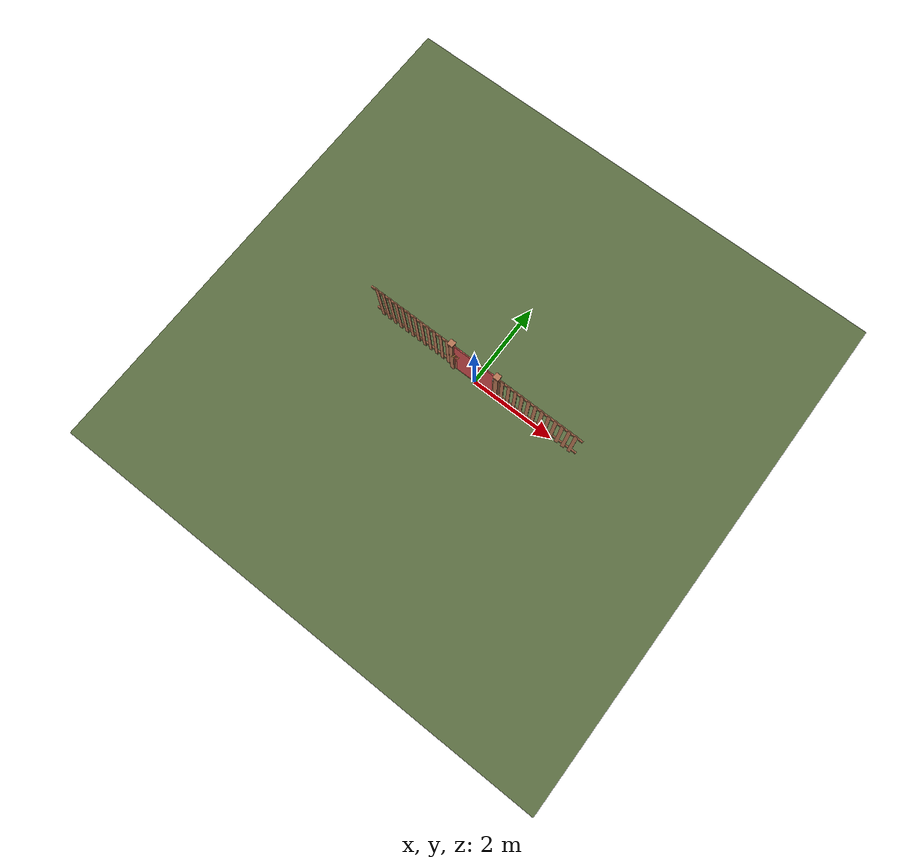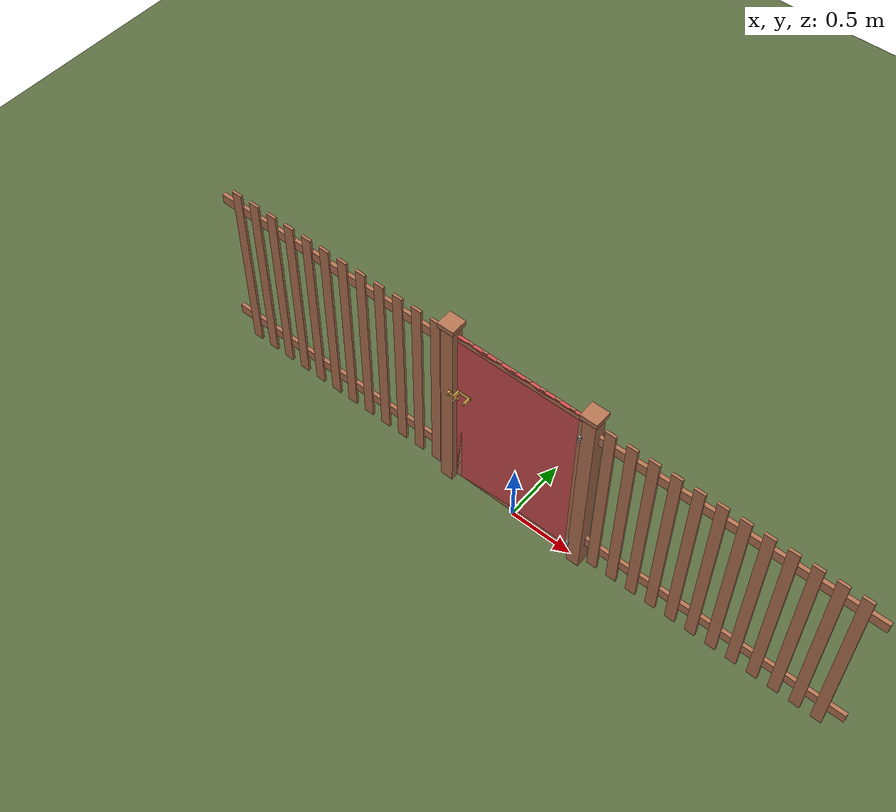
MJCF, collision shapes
<?xml version="1.0" ?>
<mujoco model="db0482_gate_swing_full">
  <compiler angle="radian" meshdir="../../hardware" texturedir="../../textures" autolimits="true" inertiafromgeom="false"/>
  <option timestep="0.002" integrator="implicitfast" cone="elliptic" impratio="10" noslip_iterations="3">
    <flag multiccd="enable"/>
  </option>
  <size memory="16M"/>
  <default>
    <geom condim="4" solref="0.005 1" solimp="0.95 0.99 0.001"/>
    <joint solreflimit="0.005 1" solimplimit="0.95 0.99 0.001"/>
    <tendon solreflimit="0.005 1"/>
    <equality solref="0.002 1"/>
  </default>
  <visual>
    <headlight ambient="0.4 0.4 0.4" diffuse="0.7 0.7 0.7" specular="0.2 0.2 0.2"/>
    <quality shadowsize="4096"/>
    <map znear="0.01" zfar="60"/>
  </visual>
  <asset>
    <mesh name="strap_hinge_f1a982ddce" file="strap_hinge_f1a982ddce.obj"/>
    <material name="mat_floor" rgba="0.35 0.42 0.25 1" specular="0.2" shininess="0.15" reflectance="0"/>
    <material name="mat_wall" rgba="0.78 0.76 0.7 1" specular="0.2" shininess="0.1" reflectance="0"/>
    <material name="mat_leaf" rgba="0.7 0.45 0.32 1" specular="0.2" shininess="0.4" reflectance="0"/>
    <material name="mat_hinge" rgba="0.65 0.66 0.68 1" specular="0.74" shininess="0.5" reflectance="0.36"/>
    <material name="mat_op_brass" rgba="0.85 0.66 0.3 1" specular="0.8" shininess="0.75" reflectance="0.4"/>
    <material name="mat_frame" rgba="0.7 0.45 0.32 1" specular="0.2" shininess="0.4" reflectance="0"/>
    <material name="mat_fence" rgba="0.7 0.45 0.32 1" specular="0.2" shininess="0.4" reflectance="0"/>
    <texture name="skybox" type="skybox" builtin="gradient" rgb1="0.6 0.7 0.85" rgb2="0.9 0.92 0.95" width="256" height="256"/>
  </asset>
  <worldbody>
    <light name="sun" pos="1.5 -2.5 4" dir="-0.3 0.5 -0.8" directional="true" diffuse="0.8 0.8 0.8" specular="0.3 0.3 0.3" castshadow="true"/>
    <light name="fill" pos="-1.5 2.5 3" dir="0.3 -0.5 -0.7" directional="true" diffuse="0.35 0.35 0.4" castshadow="false"/>
    <camera name="robot_view" pos="0 -2.05 1.334" xyaxes="1 0 0 0 0.26963 0.962964" fovy="52"/>
    <camera name="far_view" pos="0 2.05 1.334" xyaxes="-1 0 0 0 -0.26963 0.962964" fovy="52"/>
    <camera name="iso" pos="-1.558 -1.722 1.662" xyaxes="0.741536 -0.670913 0 0.242917 0.268487 0.932151" fovy="46"/>
    <camera name="detail_handle" pos="-0.282 -0.896 1.28" xyaxes="0.97561 0.219512 0 -0.070934 0.315262 0.94635" fovy="38"/>
    <geom name="floor" type="box" size="6 6 0.05" pos="0 0 -0.05" material="mat_floor" group="0" contype="1" conaffinity="1" friction="0.8 0.005 0.0001" density="2400"/>
    <geom name="hinge_pintle_0" type="cylinder" size="0.008 0.02" pos="0.503 -0.05 0.174" material="mat_hinge" group="1" contype="0" conaffinity="0" density="7850"/>
    <geom name="hinge_pintle_1" type="cylinder" size="0.008 0.02" pos="0.503 -0.05 1.374" material="mat_hinge" group="1" contype="0" conaffinity="0" density="7850"/>
    <geom name="leaf_slide_bolt_keeper_leg_n" type="box" size="0.007 0.0025 0.013" pos="-0.526 -0.063 1.0115" quat="0 0 -0.707107 0.707107" material="mat_op_brass" group="0" contype="1" conaffinity="1" friction="0.6 0.005 0.0001" density="7800"/>
    <geom name="leaf_slide_bolt_keeper_leg_p" type="box" size="0.007 0.0025 0.013" pos="-0.526 -0.063 0.9885" quat="0 0 -0.707107 0.707107" material="mat_op_brass" group="0" contype="1" conaffinity="1" friction="0.6 0.005 0.0001" density="7800"/>
    <geom name="leaf_slide_bolt_keeper_bridge" type="box" size="0.007 0.014 0.0025" pos="-0.526 -0.0735 1" quat="0 0 -0.707107 0.707107" material="mat_op_brass" group="0" contype="1" conaffinity="1" friction="0.6 0.005 0.0001" density="7800"/>
    <geom name="leaf_slide_bolt_keeper_base" type="box" size="0.015 0.02 0.001" pos="-0.526 -0.051 1" quat="0 0 -0.707107 0.707107" material="mat_op_brass" group="1" contype="0" conaffinity="0" density="7800"/>
    <geom name="post_hinge" type="box" size="0.05 0.05 0.8" pos="0.556 0 0.8" material="mat_frame" group="0" contype="1" conaffinity="1" friction="0.6 0.005 0.0001" density="350"/>
    <geom name="post_hinge_cap" type="box" size="0.065 0.065 0.02" pos="0.556 0 1.62" material="mat_frame" group="1" contype="0" conaffinity="0" density="350"/>
    <geom name="post_latch" type="box" size="0.05 0.05 0.8" pos="-0.556 0 0.8" material="mat_frame" group="0" contype="1" conaffinity="1" friction="0.6 0.005 0.0001" density="350"/>
    <geom name="post_latch_cap" type="box" size="0.065 0.065 0.02" pos="-0.556 0 1.62" material="mat_frame" group="1" contype="0" conaffinity="0" density="350"/>
    <geom name="gate_stop" type="box" size="0.02 0.012 0.06" pos="-0.486 0.0245 0.3" material="mat_frame" group="0" contype="1" conaffinity="1" friction="0.6 0.005 0.0001" density="350"/>
    <geom name="fence_picket_l_0" type="box" size="0.04 0.01 0.75" pos="-0.686 0 0.8" material="mat_fence" group="0" contype="1" conaffinity="1" friction="0.6 0.005 0.0001" density="400"/>
    <geom name="fence_picket_l_1" type="box" size="0.04 0.01 0.75" pos="-0.846 0 0.8" material="mat_fence" group="0" contype="1" conaffinity="1" friction="0.6 0.005 0.0001" density="400"/>
    <geom name="fence_picket_l_2" type="box" size="0.04 0.01 0.75" pos="-1.006 0 0.8" material="mat_fence" group="0" contype="1" conaffinity="1" friction="0.6 0.005 0.0001" density="400"/>
    <geom name="fence_picket_l_3" type="box" size="0.04 0.01 0.75" pos="-1.166 0 0.8" material="mat_fence" group="0" contype="1" conaffinity="1" friction="0.6 0.005 0.0001" density="400"/>
    <geom name="fence_picket_l_4" type="box" size="0.04 0.01 0.75" pos="-1.326 0 0.8" material="mat_fence" group="0" contype="1" conaffinity="1" friction="0.6 0.005 0.0001" density="400"/>
    <geom name="fence_picket_l_5" type="box" size="0.04 0.01 0.75" pos="-1.486 0 0.8" material="mat_fence" group="0" contype="1" conaffinity="1" friction="0.6 0.005 0.0001" density="400"/>
    <geom name="fence_picket_l_6" type="box" size="0.04 0.01 0.75" pos="-1.646 0 0.8" material="mat_fence" group="0" contype="1" conaffinity="1" friction="0.6 0.005 0.0001" density="400"/>
    <geom name="fence_picket_l_7" type="box" size="0.04 0.01 0.75" pos="-1.806 0 0.8" material="mat_fence" group="0" contype="1" conaffinity="1" friction="0.6 0.005 0.0001" density="400"/>
    <geom name="fence_picket_l_8" type="box" size="0.04 0.01 0.75" pos="-1.966 0 0.8" material="mat_fence" group="0" contype="1" conaffinity="1" friction="0.6 0.005 0.0001" density="400"/>
    <geom name="fence_picket_l_9" type="box" size="0.04 0.01 0.75" pos="-2.126 0 0.8" material="mat_fence" group="0" contype="1" conaffinity="1" friction="0.6 0.005 0.0001" density="400"/>
    <geom name="fence_picket_l_10" type="box" size="0.04 0.01 0.75" pos="-2.286 0 0.8" material="mat_fence" group="0" contype="1" conaffinity="1" friction="0.6 0.005 0.0001" density="400"/>
    <geom name="fence_picket_l_11" type="box" size="0.04 0.01 0.75" pos="-2.446 0 0.8" material="mat_fence" group="0" contype="1" conaffinity="1" friction="0.6 0.005 0.0001" density="400"/>
    <geom name="fence_rail_l" type="box" size="1 0.015 0.04" pos="-1.606 0.015 1.4" material="mat_fence" group="0" contype="1" conaffinity="1" friction="0.6 0.005 0.0001" density="400"/>
    <geom name="fence_rail_b_l" type="box" size="1 0.015 0.04" pos="-1.606 0.015 0.25" material="mat_fence" group="0" contype="1" conaffinity="1" friction="0.6 0.005 0.0001" density="400"/>
    <geom name="fence_picket_r_0" type="box" size="0.04 0.01 0.75" pos="0.686 0 0.8" material="mat_fence" group="0" contype="1" conaffinity="1" friction="0.6 0.005 0.0001" density="400"/>
    <geom name="fence_picket_r_1" type="box" size="0.04 0.01 0.75" pos="0.846 0 0.8" material="mat_fence" group="0" contype="1" conaffinity="1" friction="0.6 0.005 0.0001" density="400"/>
    <geom name="fence_picket_r_2" type="box" size="0.04 0.01 0.75" pos="1.006 0 0.8" material="mat_fence" group="0" contype="1" conaffinity="1" friction="0.6 0.005 0.0001" density="400"/>
    <geom name="fence_picket_r_3" type="box" size="0.04 0.01 0.75" pos="1.166 0 0.8" material="mat_fence" group="0" contype="1" conaffinity="1" friction="0.6 0.005 0.0001" density="400"/>
    <geom name="fence_picket_r_4" type="box" size="0.04 0.01 0.75" pos="1.326 0 0.8" material="mat_fence" group="0" contype="1" conaffinity="1" friction="0.6 0.005 0.0001" density="400"/>
    <geom name="fence_picket_r_5" type="box" size="0.04 0.01 0.75" pos="1.486 0 0.8" material="mat_fence" group="0" contype="1" conaffinity="1" friction="0.6 0.005 0.0001" density="400"/>
    <geom name="fence_picket_r_6" type="box" size="0.04 0.01 0.75" pos="1.646 0 0.8" material="mat_fence" group="0" contype="1" conaffinity="1" friction="0.6 0.005 0.0001" density="400"/>
    <geom name="fence_picket_r_7" type="box" size="0.04 0.01 0.75" pos="1.806 0 0.8" material="mat_fence" group="0" contype="1" conaffinity="1" friction="0.6 0.005 0.0001" density="400"/>
    <geom name="fence_picket_r_8" type="box" size="0.04 0.01 0.75" pos="1.966 0 0.8" material="mat_fence" group="0" contype="1" conaffinity="1" friction="0.6 0.005 0.0001" density="400"/>
    <geom name="fence_picket_r_9" type="box" size="0.04 0.01 0.75" pos="2.126 0 0.8" material="mat_fence" group="0" contype="1" conaffinity="1" friction="0.6 0.005 0.0001" density="400"/>
    <geom name="fence_picket_r_10" type="box" size="0.04 0.01 0.75" pos="2.286 0 0.8" material="mat_fence" group="0" contype="1" conaffinity="1" friction="0.6 0.005 0.0001" density="400"/>
    <geom name="fence_picket_r_11" type="box" size="0.04 0.01 0.75" pos="2.446 0 0.8" material="mat_fence" group="0" contype="1" conaffinity="1" friction="0.6 0.005 0.0001" density="400"/>
    <geom name="fence_rail_r" type="box" size="1 0.015 0.04" pos="1.606 0.015 1.4" material="mat_fence" group="0" contype="1" conaffinity="1" friction="0.6 0.005 0.0001" density="400"/>
    <geom name="fence_rail_b_r" type="box" size="1 0.015 0.04" pos="1.606 0.015 0.25" material="mat_fence" group="0" contype="1" conaffinity="1" friction="0.6 0.005 0.0001" density="400"/>
    <geom name="gate_stop_strap_0" type="box" size="0.0505 0.0096 0.048" pos="-0.556 0.0245 0.3" material="mat_frame" group="1" contype="0" conaffinity="0" density="7850"/>
    <site name="approach_point" pos="0 -1.5 0" quat="1 0 0 0" size="0.05" rgba="0.2 0.9 0.2 0.5" group="4"/>
    <site name="goal_point" pos="0 1.5 0" quat="1 0 0 0" size="0.05" rgba="0.2 0.9 0.2 0.5" group="4"/>
    <site name="door_plane_center" pos="0 0 0.76" quat="1 0 0 0" size="0.02" rgba="0.2 0.9 0.2 0.5" group="4"/>
    <body name="leaf" pos="0.506 0 0">
      <inertial pos="-0.463059 -0.002736 0.802369" mass="14.113216" quat="0.50055 0.504422 0.495752 -0.499238" diaginertia="1.305636067 2.901117929 4.203414158"/>
      <joint name="leaf_hinge" type="hinge" axis="0 0 1" pos="-0.003 -0.05 0" limited="true" range="0 1.745329" damping="0.3209" frictionloss="5.443647" armature="0.02"/>
      <geom name="leaf_slab_col" type="box" size="0.5 0.0125 0.75" pos="-0.503 0 0.8" material="mat_leaf" group="3" contype="1" conaffinity="1" rgba="0.8 0.3 0.3 0.25" friction="0.35 0.005 0.0001" density="1"/>
      <geom name="leaf_rail_b" type="box" size="0.5 0.0125 0.0225" pos="-0.503 0 0.0725" material="mat_leaf" group="1" contype="0" conaffinity="0" density="1"/>
      <geom name="leaf_rail_t" type="box" size="0.5 0.0125 0.0225" pos="-0.503 0 1.5275" material="mat_leaf" group="1" contype="0" conaffinity="0" density="1"/>
      <geom name="leaf_stile_h" type="box" size="0.0225 0.0125 0.75" pos="-0.0255 0 0.8" material="mat_leaf" group="1" contype="0" conaffinity="0" density="1"/>
      <geom name="leaf_stile_l" type="box" size="0.0225 0.0125 0.75" pos="-0.9805 0 0.8" material="mat_leaf" group="1" contype="0" conaffinity="0" density="1"/>
      <geom name="leaf_picket_0" type="box" size="0.02 0.00875 0.7365" pos="-0.104875 0 0.82" material="mat_leaf" group="1" contype="0" conaffinity="0" density="1"/>
      <geom name="leaf_picket_1" type="box" size="0.02 0.00875 0.7365" pos="-0.218625 0 0.82" material="mat_leaf" group="1" contype="0" conaffinity="0" density="1"/>
      <geom name="leaf_picket_2" type="box" size="0.02 0.00875 0.7365" pos="-0.332375 0 0.82" material="mat_leaf" group="1" contype="0" conaffinity="0" density="1"/>
      <geom name="leaf_picket_3" type="box" size="0.02 0.00875 0.7365" pos="-0.446125 0 0.82" material="mat_leaf" group="1" contype="0" conaffinity="0" density="1"/>
      <geom name="leaf_picket_4" type="box" size="0.02 0.00875 0.7365" pos="-0.559875 0 0.82" material="mat_leaf" group="1" contype="0" conaffinity="0" density="1"/>
      <geom name="leaf_picket_5" type="box" size="0.02 0.00875 0.7365" pos="-0.673625 0 0.82" material="mat_leaf" group="1" contype="0" conaffinity="0" density="1"/>
      <geom name="leaf_picket_6" type="box" size="0.02 0.00875 0.7365" pos="-0.787375 0 0.82" material="mat_leaf" group="1" contype="0" conaffinity="0" density="1"/>
      <geom name="leaf_picket_7" type="box" size="0.02 0.00875 0.7365" pos="-0.901125 0 0.82" material="mat_leaf" group="1" contype="0" conaffinity="0" density="1"/>
      <geom name="hinge_strap_0" type="mesh" mesh="strap_hinge_f1a982ddce" pos="-0.003 -0.0155 0.2" quat="0 0 0 1" material="mat_hinge" group="1" contype="0" conaffinity="0" density="7850"/>
      <geom name="hinge_strap_eye_0" type="cylinder" size="0.011 0.012" pos="-0.003 -0.05 0.2" material="mat_hinge" group="1" contype="0" conaffinity="0" density="7850"/>
      <geom name="hinge_strap_neck_0" type="box" size="0.012 0.02125 0.006" pos="-0.003 -0.03275 0.2" material="mat_hinge" group="1" contype="0" conaffinity="0" density="7850"/>
      <geom name="hinge_strap_1" type="mesh" mesh="strap_hinge_f1a982ddce" pos="-0.003 -0.0155 1.4" quat="0 0 0 1" material="mat_hinge" group="1" contype="0" conaffinity="0" density="7850"/>
      <geom name="hinge_strap_eye_1" type="cylinder" size="0.011 0.012" pos="-0.003 -0.05 1.4" material="mat_hinge" group="1" contype="0" conaffinity="0" density="7850"/>
      <geom name="hinge_strap_neck_1" type="box" size="0.012 0.02125 0.006" pos="-0.003 -0.03275 1.4" material="mat_hinge" group="1" contype="0" conaffinity="0" density="7850"/>
      <geom name="leaf_slide_bolt_plate" type="box" size="0.054 0.019 0.001" pos="-0.941 -0.0135 1" quat="0 0 -0.707107 0.707107" material="mat_op_brass" group="1" contype="0" conaffinity="0" density="7800"/>
      <geom name="leaf_slide_bolt_guide_0_leg_n" type="box" size="0.006 0.002 0.03125" pos="-0.987 -0.04375 1.011" quat="0 0 -0.707107 0.707107" material="mat_op_brass" group="1" contype="0" conaffinity="0" density="7800"/>
      <geom name="leaf_slide_bolt_guide_0_leg_p" type="box" size="0.006 0.002 0.03125" pos="-0.987 -0.04375 0.989" quat="0 0 -0.707107 0.707107" material="mat_op_brass" group="1" contype="0" conaffinity="0" density="7800"/>
      <geom name="leaf_slide_bolt_guide_0_bridge" type="box" size="0.006 0.013 0.002" pos="-0.987 -0.073 1" quat="0 0 -0.707107 0.707107" material="mat_op_brass" group="1" contype="0" conaffinity="0" density="7800"/>
      <geom name="leaf_slide_bolt_guide_1_leg_n" type="box" size="0.006 0.002 0.03125" pos="-0.897 -0.04375 1.011" quat="0 0 -0.707107 0.707107" material="mat_op_brass" group="1" contype="0" conaffinity="0" density="7800"/>
      <geom name="leaf_slide_bolt_guide_1_leg_p" type="box" size="0.006 0.002 0.03125" pos="-0.897 -0.04375 0.989" quat="0 0 -0.707107 0.707107" material="mat_op_brass" group="1" contype="0" conaffinity="0" density="7800"/>
      <geom name="leaf_slide_bolt_guide_1_bridge" type="box" size="0.006 0.013 0.002" pos="-0.897 -0.073 1" quat="0 0 -0.707107 0.707107" material="mat_op_brass" group="1" contype="0" conaffinity="0" density="7800"/>
      <site name="leaf_edge_mid" pos="-1.003 0 0.75" quat="1 0 0 0" size="0.02" rgba="0.2 0.9 0.2 0.5" group="4"/>
      <body name="leaf_slide_bolt" pos="-1.003 -0.062 1">
        <inertial pos="0.015176 -0.00492 0" mass="0.111784" quat="0.996956 0 0 -0.077968" diaginertia="0.000011166 0.000082162 0.00009144"/>
        <joint name="leaf_slide_bolt_slide" type="slide" axis="1 0 0" limited="true" range="0 0.045" damping="1" frictionloss="1" armature="0.1"/>
        <geom name="leaf_slide_bolt_rod" type="capsule" size="0.006 0.044" pos="0.009 0 0" quat="0.707107 0 -0.707107 0" material="mat_op_brass" group="0" contype="1" conaffinity="1" friction="0.6 0.005 0.0001" density="7850"/>
        <geom name="leaf_slide_bolt_knob" type="capsule" size="0.005 0.01" pos="0.035 -0.015 0" quat="0.707107 0.707107 0 0" material="mat_op_brass" group="0" contype="1" conaffinity="1" friction="0.6 0.005 0.0001" density="7850"/>
        <geom name="leaf_slide_bolt_knob_end" type="sphere" size="0.00675" pos="0.035 -0.03 0" material="mat_op_brass" group="1" contype="0" conaffinity="0" density="7850"/>
        <site name="leaf_grip_n" pos="0.035 -0.034 0" quat="1 0 0 0" size="0.012" rgba="0.2 0.9 0.2 0.5" group="4"/>
      </body>
    </body>
  </worldbody>
  <sensor>
    <jointpos name="leaf_hinge_pos" joint="leaf_hinge"/>
    <jointvel name="leaf_hinge_vel" joint="leaf_hinge"/>
    <jointpos name="leaf_slide_bolt_slide_pos" joint="leaf_slide_bolt_slide"/>
    <jointvel name="leaf_slide_bolt_slide_vel" joint="leaf_slide_bolt_slide"/>
  </sensor>
</mujoco>
